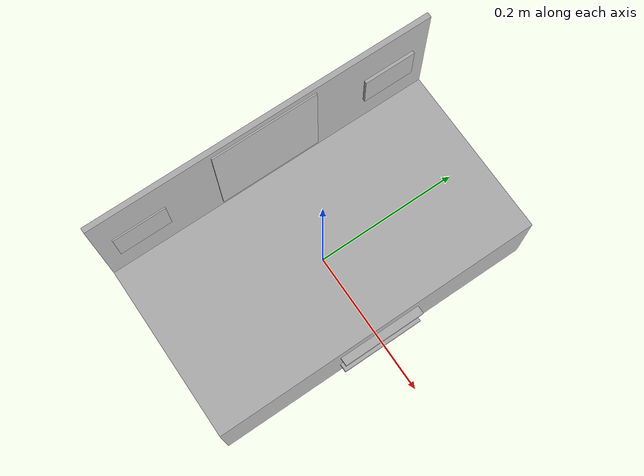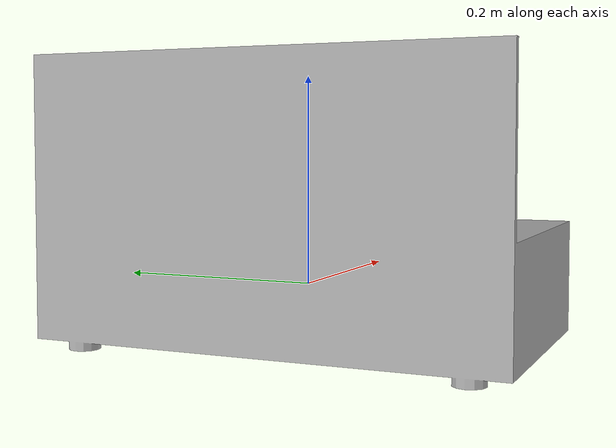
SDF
<?xml version='1.0'?>
<sdf version='1.6'>
  <model name='rb1_docking_station_1'>
    <link name='link_0'>
      <pose frame=''>0 0 0.0 0 -0 0.0</pose>
      <inertial>
         <mass>5.0</mass>
        <inertia>
          <ixx>0.166667</ixx>
          <ixy>0</ixy>
          <ixz>0</ixz>
          <iyy>0.166667</iyy>
          <iyz>0</iyz>
          <izz>0.166667</izz>
        </inertia>
        <pose frame=''>0 0 0 0 -0 0</pose>
      </inertial>
      <gravity>1</gravity>
      <self_collide>0</self_collide>
      <kinematic>0</kinematic>

      <visual name='visual0'>
        <pose frame=''>0.1225 0 -0.06 0 0 0</pose>
        <geometry>
          <mesh>
		<uri>model://rb1_docking_station_1/meshes/rb1_docking_station.dae</uri>
            <scale>1 1 1</scale>
          </mesh>
        </geometry>
        <material>
          <lighting>1</lighting>
          <ambient>0.3 0.3 0.3 1</ambient>
          <diffuse>0.7 0.7 0.7 1</diffuse>
          <specular>0.01 0.01 0.01 1</specular>
          <emissive>0 0 0 1</emissive>
          <shader type='vertex'>
            <normal_map>__default__</normal_map>
          </shader>
        </material>
        <cast_shadows>1</cast_shadows>
        <transparency>0</transparency>
      </visual>

      <collision name='collision0'>
        <laser_retro>0</laser_retro>
        <max_contacts>10</max_contacts>
        <pose frame=''>0.0 -0.0 0.0 0 -0 0</pose>
        <geometry>
          <box>
            <size>0.245 0.456 0.12</size>
          </box>
        </geometry>
      </collision>
    </link>

    <link name='link_qr_code'>
      <pose frame=''>-0.114 0 0.1395 0 0 0</pose>
      <gravity>1</gravity>
      <visual name='visual'>
        <pose frame=''>0 0 0 0 -0 0</pose>
        <geometry>
          <box>
            <size>0.002 0.14 0.14</size>
          </box>
        </geometry>
        <material>
          <script>
		<uri>model://marker1_border_12cm/material/scripts</uri>
		<uri>model://marker1_border_12cm/material/textures</uri>
		<name>ARtrack/marker1_border_12cm</name>
          </script>
        </material>

      </visual>
    </link>

    <link name='link_reflector_1'>
      <pose frame=''>-0.114 0.173 0.134 0 0 0</pose>
      <gravity>0</gravity>

      <visual name='visual0'>
        <pose frame=''>0 0 -0.0 0 -0 0</pose>
        <geometry>
          <box><size>0.005 0.07 0.05</size></box>
        </geometry>
	<material>
          <lighting>1</lighting>
          <ambient>0.3 0.3 0.3 1</ambient>
          <diffuse>0.7 0.7 0.7 1</diffuse>
          <specular>0.01 0.01 0.01 1</specular>
          <emissive>0 0 0 1</emissive>
          <shader type='vertex'>
            <normal_map>__default__</normal_map>
          </shader>
        </material>
      </visual>
      <collision name='collision0'>
        <pose frame=''>0 0 -0.0 0 -0 0</pose>
        <geometry>
          <box><size>0.002 0.07 0.1</size></box>
        </geometry>
	<laser_retro>8000</laser_retro>
      </collision>
    </link>

    <link name='link_reflector_2'>
      <pose frame=''>-0.114 -0.173 0.134 0 0 0</pose>
      <gravity>0</gravity>

      <visual name='visual0'>
        <pose frame=''>0 0 -0.0 0 -0 0</pose>
        <geometry>
          <box><size>0.002 0.07 0.05</size></box>
        </geometry>
	<material>
          <lighting>1</lighting>
          <ambient>0.3 0.3 0.3 1</ambient>
          <diffuse>0.7 0.7 0.7 1</diffuse>
          <specular>0.01 0.01 0.01 1</specular>
          <emissive>0 0 0 1</emissive>
          <shader type='vertex'>
            <normal_map>__default__</normal_map>
          </shader>
        </material>
      </visual>
      <collision name='collision0'>
        <pose frame=''>0 0 -0.0 0 -0 0</pose>
        <geometry>
          <box><size>0.005 0.07 0.1</size></box>
        </geometry>
	<laser_retro>8000</laser_retro>
      </collision>
    </link>

    <joint name='joint_0_to_reflector_1' type='fixed'>
      <parent>link_0</parent>
      <child>link_reflector_1</child>
      <pose frame=''>0 0 0 0 -0 0</pose>
      <physics>
        <ode>
          <limit>
            <cfm>0</cfm>
            <erp>0.2</erp>
          </limit>
          <suspension>
            <cfm>0</cfm>
            <erp>0.2</erp>
          </suspension>
        </ode>
      </physics>
    </joint>
    <joint name='joint_0_to_reflector_2' type='fixed'>
      <parent>link_0</parent>
      <child>link_reflector_2</child>
      <pose frame=''>0 0 0 0 -0 0</pose>
      <physics>
        <ode>
          <limit>
            <cfm>0</cfm>
            <erp>0.2</erp>
          </limit>
          <suspension>
            <cfm>0</cfm>
            <erp>0.2</erp>
          </suspension>
        </ode>
      </physics>
    </joint>
    <joint name='joint_0_to_marker' type='fixed'>
      <parent>link_0</parent>
      <child>link_qr_code</child>
      <pose frame=''>0 0 0 0 -0 0</pose>
      <physics>
        <ode>
          <limit>
            <cfm>0</cfm>
            <erp>0.2</erp>
          </limit>
          <suspension>
            <cfm>0</cfm>
            <erp>0.2</erp>
          </suspension>
        </ode>
      </physics>
    </joint>

    <static>0</static>
    <allow_auto_disable>1</allow_auto_disable>
  </model>
</sdf>
